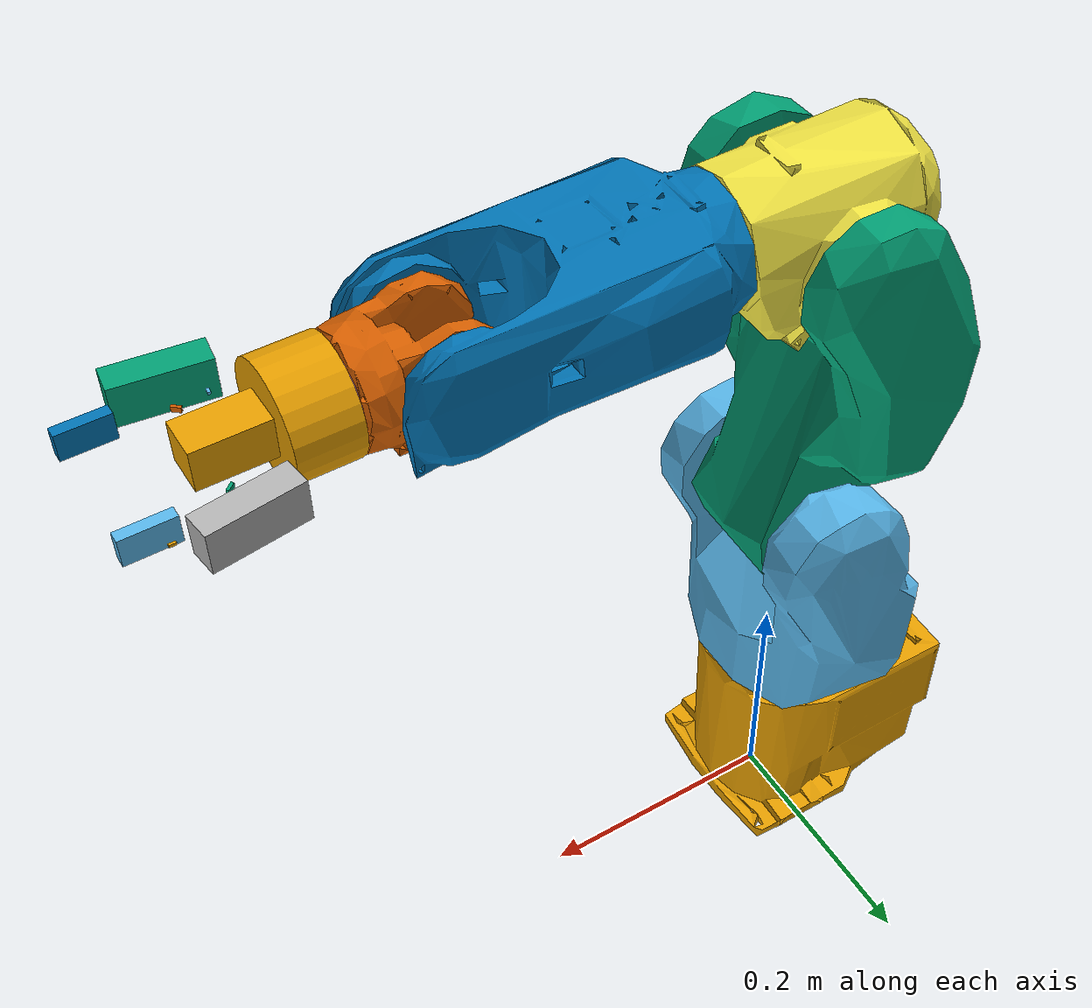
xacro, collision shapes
<?xml version="1.0" encoding="utf-8"?>
<robot xmlns:xacro="http://www.ros.org/wiki/xacro" name="mz04_gripper">
  <xacro:include filename="$(find mz04_description)/robots/mz04_arm.xacro"/>
  <xacro:include filename="$(find mz04_description)/robots/epick.xacro"/>
  <xacro:include filename="$(find mz04_description)/robots/hand/robotiq_2f_85.urdf.xacro"/>

  <xacro:arg name="arm_id" default="mz04" />

  <xacro:mz04_arm arm_id="$(arg arm_id)" />

  <xacro:robotiq_2f_85 parent="$(arg arm_id)_link6" name="hand">
    <origin xyz="0 0 0" rpy="0 0 0"/>
  </xacro:robotiq_2f_85>

</robot>

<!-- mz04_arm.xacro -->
<robot xmlns:xacro="http://www.ros.org/wiki/xacro" name="mz04">
  <xacro:macro name="mz04_arm" params="arm_id:='mz04' description_pkg:='mz04_description' connected_to:='' xyz:='0 0 0' rpy:='0 0 0'">
    <xacro:unless value="${not connected_to}">
      <joint name="${arm_id}_joint_${connected_to}" type="fixed">
        <parent link="${connected_to}"/>
        <child link="${arm_id}_link0"/>
        <origin rpy="${rpy}" xyz="${xyz}"/>
      </joint>
    </xacro:unless>

    <!-- for simulation -->

    <xacro:property name="joint_damping" value="1.0"/>
    <!-- end for simulation -->

    <link name="${arm_id}_link0">
      <visual>
        <geometry>
          <mesh filename="package://${description_pkg}/meshes/visual/link0.dae"/>
        </geometry>
      </visual>
      <collision>
        <geometry>
          <mesh filename="package://${description_pkg}/meshes/collision/link0.stl"/>
        </geometry>
      </collision>
    </link>
    <link name="${arm_id}_link1">
      <visual>
        <geometry>
          <mesh filename="package://${description_pkg}/meshes/visual/link1.dae"/>
        </geometry>
      </visual>
      <collision>
        <geometry>
          <mesh filename="package://${description_pkg}/meshes/collision/link1.stl"/>
        </geometry>
      </collision>

      <!-- for simulation -->
      <inertial>
        <origin
          xyz="-0.0197023514199581 0.000938298692799631 0.0855256712156905"
          rpy="0 0 0" />
        <mass
          value="3.29244591173868" />
        <inertia
          ixx="0.0222350895636315"
          ixy="-6.0973596097687E-05"
          ixz="-0.00175393698078112"
          iyy="0.0154200096606875"
          iyz="-0.000258002191557829"
          izz="0.0150764764826899" />
      </inertial>
      <!-- end for simulation -->
    </link>
    <joint name="${arm_id}_joint1" type="revolute">
      <safety_controller k_position="100.0" k_velocity="40.0" soft_lower_limit="-2.97" soft_upper_limit="2.97"/>
      <origin rpy="0 0 0" xyz="0 0 0.171"/>
      <parent link="${arm_id}_link0"/>
      <child link="${arm_id}_link1"/>
      <axis xyz="0 0 1"/>
      <limit effort="100" lower="-2.97" upper="2.97" velocity="8.38"/>

      <!-- for simulation -->
      <dynamics damping="${joint_damping}"/>
      <!-- end for simulation -->
    </joint>
    <link name="${arm_id}_link2">
      <visual>
        <geometry>
          <mesh filename="package://${description_pkg}/meshes/visual/link2.dae"/>
        </geometry>
      </visual>
      <collision>
        <geometry>
          <mesh filename="package://${description_pkg}/meshes/collision/link2.stl"/>
        </geometry>
      </collision>

      <!-- for simulation -->
      <inertial>
        <origin
          xyz="-0.0229430342959031 -0.129313116426115 -0.000857512097067098"
          rpy="0 0 0" />
        <mass
          value="3.43354405526974" />
        <inertia
          ixx="0.0374859154128489"
          ixy="-0.000577795026903937"
          ixz="6.67389962661599E-05"
          iyy="0.0140465634657448"
          iyz="0.000377486259040234"
          izz="0.0301480758700004" />
      </inertial>
      <!-- end for simulation -->
    </link>
    <joint name="${arm_id}_joint2" type="revolute">
      <safety_controller k_position="100.0" k_velocity="40.0" soft_lower_limit="-2.53" soft_upper_limit="1.57"/>
      <origin rpy="${-pi/2} 0 0" xyz="0 0 0.169"/>
      <parent link="${arm_id}_link1"/>
      <child link="${arm_id}_link2"/>
      <axis xyz="0 0 -1"/>
      <limit effort="100" lower="-2.53" upper="1.57" velocity="8.03"/>

      <!-- for simulation -->
      <dynamics damping="${joint_damping}"/>
      <!-- end for simulation -->
    </joint>
    <link name="${arm_id}_link3">
      <visual>
        <geometry>
          <mesh filename="package://${description_pkg}/meshes/visual/link3.dae"/>
        </geometry>
      </visual>
      <collision>
        <geometry>
          <mesh filename="package://${description_pkg}/meshes/collision/link3.stl"/>
        </geometry>
      </collision>

      <!-- for simulation -->
      <inertial>
        <origin
          xyz="0.00557516997606589 -0.000280097155568842 -0.000264708631542377"
          rpy="0 0 0" />
        <mass
          value="1.75772574412506" />
        <inertia
          ixx="0.0032167713214568"
          ixy="-0.000191167581086016"
          ixz="1.23933539489604E-06"
          iyy="0.00322653422939074"
          iyz="5.25316745371768E-06"
          izz="0.00390619750681237" />
      </inertial>
      <!-- end for simulation -->
    </link>
    <joint name="${arm_id}_joint3" type="revolute">
      <safety_controller k_position="100.0" k_velocity="40.0" soft_lower_limit="-2.18" soft_upper_limit="4.89"/>
      <origin rpy="0 0 ${-pi/2}" xyz="0 -0.26 0"/>
      <parent link="${arm_id}_link2"/>
      <child link="${arm_id}_link3"/>
      <axis xyz="0 0 -1"/>
      <limit effort="100" lower="-2.18" upper="4.89" velocity="9.08"/>

      <!-- for simulation -->
      <dynamics damping="${joint_damping}"/>
      <!-- end for simulation -->
    </joint>
    <link name="${arm_id}_link4">
      <visual>
        <geometry>
          <mesh filename="package://${description_pkg}/meshes/visual/link4.dae"/>
        </geometry>
      </visual>
      <collision>
        <geometry>
          <mesh filename="package://${description_pkg}/meshes/collision/link4.stl"/>
        </geometry>
      </collision>

      <!-- for simulation -->
      <inertial>
        <origin
          xyz="0.00309024473150554 -0.000145366515908234 -0.102946189818116"
          rpy="0 0 0" />
        <mass
          value="1.70562401190118" />
        <inertia
          ixx="0.00721639807702088"
          ixy="-3.42236031590701E-07"
          ixz="5.92374124737924E-05"
          iyy="0.00686286874449402"
          iyz="5.84968158425155E-06"
          izz="0.00220615434229459" />
      </inertial>
      <!-- end for simulation -->
    </link>
    <joint name="${arm_id}_joint4" type="revolute">
      <safety_controller k_position="100.0" k_velocity="40.0" soft_lower_limit="-3.32" soft_upper_limit="3.32"/>
      <origin rpy="${-pi/2} 0 0" xyz="0.0249999999999999 0.28 0"/>
      <parent link="${arm_id}_link3"/>
      <child link="${arm_id}_link4"/>
      <axis xyz="0 0 1"/>
      <limit effort="100" lower="-3.32" upper="3.32" velocity="9.77"/>

      <!-- for simulation -->
      <dynamics damping="${joint_damping}"/>
      <!-- end for simulation -->
    </joint>
    <link name="${arm_id}_link5">
      <visual>
        <geometry>
          <mesh filename="package://${description_pkg}/meshes/visual/link5.dae"/>
        </geometry>
      </visual>
      <collision>
        <geometry>
          <mesh filename="package://${description_pkg}/meshes/collision/link5.stl"/>
        </geometry>
      </collision>

      <!-- for simulation -->
      <inertial>
        <origin
          xyz="-5.86547276966165E-05 0.0199090373472192 -0.00293631213635448"
          rpy="0 0 0" />
        <mass
          value="0.336399836903676" />
        <inertia
          ixx="0.000446624368283086"
          ixy="2.47061371480887E-07"
          ixz="6.15821325897774E-07"
          iyy="0.000330568174441235"
          iyz="-1.87705108529991E-05"
          izz="0.000351036334434016" />
      </inertial>
      <!-- end for simulation -->
    </link>
    <joint name="${arm_id}_joint5" type="revolute">
      <safety_controller k_position="100.0" k_velocity="40.0" soft_lower_limit="-2.09" soft_upper_limit="2.09"/>
      <origin rpy="${pi/2} 0 0" xyz="0 0 0"/>
      <parent link="${arm_id}_link4"/>
      <child link="${arm_id}_link5"/>
      <axis xyz="0 0 -1"/>
      <limit effort="100" lower="-2.09" upper="2.09" velocity="9.77"/>

      <!-- for simulation -->
      <dynamics damping="${joint_damping}"/>
      <!-- end for simulation -->
    </joint>
    <link name="${arm_id}_link6">
      <visual>
        <geometry>
          <mesh filename="package://${description_pkg}/meshes/visual/link6.dae"/>
        </geometry>
      </visual>
      <collision>
        <geometry>
          <mesh filename="package://${description_pkg}/meshes/collision/link6.stl"/>
        </geometry>
      </collision>

      <!-- for simulation -->
      <inertial>
        <origin
          xyz="0.00020870301755449 5.54207254168023E-05 0.0685507759319275"
          rpy="0 0 0" />
        <mass
          value="0.0340082287388899" />
        <inertia
          ixx="8.72489057883343E-06"
          ixy="5.14603740499548E-08"
          ixz="-7.72265367887762E-09"
          iyy="8.58258061822553E-06"
          iyz="-2.01661845696461E-09"
          izz="1.61785714739617E-05" />
      </inertial>
      <!-- end for simulation -->
    </link>
    <joint name="${arm_id}_joint6" type="revolute">
      <safety_controller k_position="100.0" k_velocity="40.0" soft_lower_limit="-6.28" soft_upper_limit="6.28"/>
      <origin rpy="${-pi/2} 0 0" xyz="0 0.072 0"/>
      <parent link="${arm_id}_link5"/>
      <child link="${arm_id}_link6"/>
      <axis xyz="0 0 1"/>
      <limit effort="10" lower="-6.28" upper="6.28" velocity="15.71"/>

      <!-- for simulation -->
      <dynamics damping="${joint_damping}"/>
      <!-- end for simulation -->
    </joint>
  </xacro:macro>
</robot>

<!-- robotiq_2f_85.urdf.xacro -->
<robot xmlns:xacro="http://ros.org/wiki/xacro">

	<xacro:include filename="$(find mz04_description)/robots/hand/include/inertias.urdf.xacro" />

	<xacro:macro name="robotiq_2f_85" params="parent name precise_collision:=false adaptive_transmission:=false with_pads:=true *origin">

		<!-- the ee link of gripper -->
		<joint name="${parent}_${name}_ee_joint" type="fixed">
			<origin xyz="0 0 0.1493" rpy="0 0 0"/>
			<parent link="${name}_base"/>
			<child link="${name}_ee_link"/>
		</joint>
		<link name="${name}_ee_link"/>

		<!-- base -->
		<joint name="${parent}_${name}_base_joint" type="fixed">
			<xacro:insert_block name="origin"/>
			<parent link="${parent}"/>
			<child link="${name}_base"/>
		</joint>
		<link name="${name}_base">
			<inertial>
				<mass value="0.5"/>
				<origin xyz="0 0 ${0.015*0.5}"  />
				<cylinder_inertia radius="0.04" length="0.045" mass="0.5"/>
			</inertial>
			<visual>
				<origin xyz="0 0 0" rpy="0 -1.5708 0"/>
				<geometry>
					<mesh filename="package://mz04_description/meshes/hand/base.dae"/>
				</geometry>
			</visual>
			<xacro:unless value="${precise_collision}">
			<collision>
				<origin xyz="0 0 0.015" rpy="0 0 0"/>
				<geometry>
					<cylinder radius="0.04" length="0.045"/>
				</geometry>
			</collision>
			<collision>
				<origin xyz="0 0 0.06" rpy="0 0 0"/>
				<geometry>
					<box size="0.03 0.03 0.06"/>
				</geometry>
			</collision>
			</xacro:unless>
			<xacro:if value="${precise_collision}">
			<collision>
				<geometry>
					<mesh filename="package://mz04_description/meshes/hand/base.stl" scale="0.001 0.001 0.001"/>
				</geometry>
			</collision>
			</xacro:if>
		</link>

		<!-- right finger -->

		<joint name="${name}_right_driver_joint" type="revolute">
			<origin xyz="0 0.0306011 0.054904" rpy="0 0 0"/>
			<parent link="${name}_base"/>
			<child link="${name}_right_driver"/>
			<axis xyz="1 0 0"/>
			<limit lower="${0 * 3.141592 / 180}" upper="${50 * 3.141592 / 180}" effort="60" velocity="${110 * 3.141592 / 180}" />
		</joint>
		<link name="${name}_right_driver">
			<inertial>
				<mass value="0.1"/>
				<origin xyz="0 0.02 0" rpy="0 0 0" />
				<box_inertia x_dim="0.02" y_dim="0.04" z_dim="0.02" mass="0.1"/>
			</inertial>
			<visual>
				<geometry>
					<mesh filename="package://mz04_description/meshes/hand/driver.dae" scale="0.001 0.001 0.001"/>
				</geometry>
			</visual>
			<xacro:unless value="${precise_collision}">
			<collision>
				<origin xyz="0 0.01 0" rpy="-0.1 0 0"/>
				<geometry>
					<box size="0.002 0.004 0.002"/>
				</geometry>
			</collision>
			</xacro:unless>
			<xacro:if value="${precise_collision}">
			<collision>
				<geometry>
					<mesh filename="package://mz04_description/meshes/hand/driver.stl" scale="0.001 0.001 0.001"/>
				</geometry>
			</collision>
			</xacro:if>
		</link>

		<xacro:unless value="${adaptive_transmission}">
		<joint name="${name}_right_coupler_joint" type="fixed">
			<origin xyz="0 0.0315 -0.0041" rpy="0 0 0"/>
			<parent link="${name}_right_driver"/>
			<child link="${name}_right_coupler"/>
		</joint>
		</xacro:unless>
		<xacro:if value="${adaptive_transmission}">
			<joint name="${name}_right_coupler_joint" type="revolute">
			<origin xyz="0 0.0315 -0.0041" rpy="0 0 0"/>
			<parent link="${name}_right_driver"/>
			<child link="${name}_right_coupler"/>
			<axis xyz="1 0 0"/>
			<limit lower="${-170 * 3.141592 / 180}" upper="${170 * 3.141592 / 180}" effort="176" velocity="${110 * 3.141592 / 180}" />
		</joint>
		</xacro:if>
		<link name="${name}_right_coupler">
			<inertial>
				<mass value="0.1"/>
				<origin xyz="0 0.0 0.025" rpy="-1.7 0 0"/>
				<box_inertia x_dim="0.03" y_dim="0.065" z_dim="0.02" mass="0.1"/>
			</inertial>
			<visual>
				<geometry>
					<mesh filename="package://mz04_description/meshes/hand/coupler.dae" scale="0.001 0.001 0.001"/>
				</geometry>
			</visual>
			<xacro:unless value="${precise_collision}">
			<collision>
				<origin xyz="0 0.0 0.025" rpy="-1.7 0 0"/>
				<geometry>
					<box size="0.03 0.065 0.02"/>
				</geometry>
			</collision>
			</xacro:unless>
			<xacro:if value="${precise_collision}">
				<collision>
					<geometry>
						<mesh filename="package://mz04_description/meshes/hand/coupler.stl" scale="0.001 0.001 0.001"/>
					</geometry>
				</collision>
			</xacro:if>
		</link>

		<joint name="${name}_right_follower_joint" type="revolute">
			<origin xyz="0 0.0061 0.0471" rpy="0 0 0"/>
			<parent link="${name}_right_coupler"/>
			<child link="${name}_right_follower"/>
			<axis xyz="1 0 0"/>
			<limit lower="${-170 * 3.141592 / 180}" upper="${170 * 3.141592 / 180}" effort="176" velocity="${110 * 3.141592 / 180}" />

			<xacro:unless value="${adaptive_transmission}">
			<mimic joint="${name}_right_driver_joint" multiplier="-1"/>
			</xacro:unless>
		</joint>
		<link name="${name}_right_follower">
			<inertial>
				<mass value="0.1"/>
				<origin xyz="0 -0.018 0.022" />
				<box_inertia x_dim="0.02" y_dim="0.015" z_dim="0.048" mass="0.1"/>
			</inertial>
			<visual>
				<geometry>
					<mesh filename="package://mz04_description/meshes/hand/follower.dae" scale="0.001 0.001 0.001"/>
				</geometry>
			</visual>
			<xacro:unless value="${precise_collision}">
			<collision>
				<origin xyz="0 -0.01 0.022" rpy="0 0 0"/>
				<geometry>
					<box size="0.002 0.0015 0.0048"/>
				</geometry>
			</collision>
			</xacro:unless>
			<xacro:if value="${precise_collision}">
			<collision>
				<geometry>
					<mesh filename="package://mz04_description/meshes/hand/follower.stl" scale="0.001 0.001 0.001"/>
				</geometry>
			</collision>
			</xacro:if>
		</link>

		<xacro:if value="${with_pads}">
			<joint name="${name}_right_pad_joint" type="fixed">
				<parent link="${name}_right_follower"/>
				<child link="${name}_right_pad"/>
			</joint>
			<link name="${name}_right_pad">
				<inertial>
					<mass value="0.1"/>
					<origin xyz="0 -0.022 0.031" />
					<box_inertia x_dim="0.02" y_dim="0.008" z_dim="0.036" mass="0.1"/>
				</inertial>
				<visual>
					<geometry>
						<mesh filename="package://mz04_description/meshes/hand/pad.dae" scale="0.001 0.001 0.001"/>
					</geometry>
				</visual>
				<xacro:unless value="${precise_collision}">
				<collision>
					<origin xyz="0 -0.022 0.031" rpy="0 0 0"/>
					<geometry>
						<box size="0.02 0.008 0.036"/>
					</geometry>
				</collision>
				</xacro:unless>
				<xacro:if value="${precise_collision}">
				<collision>
					<geometry>
						<mesh filename="package://mz04_description/meshes/hand/pad.stl" scale="0.001 0.001 0.001"/>
					</geometry>
				</collision>
				</xacro:if>
			</link>
		</xacro:if>

		<joint name="${name}_right_spring_link_joint" type="revolute">
			<origin xyz="0 0.012 0.0614" rpy="0 0 0"/>
			<parent link="${name}_base"/>
			<child link="${name}_right_spring_link"/>
			<axis xyz="1 0 0"/>
			<limit lower="${-170 * 3.141592 / 180}" upper="${170 * 3.141592 / 180}" effort="176" velocity="${110 * 3.141592 / 180}" />

			<xacro:unless value="${adaptive_transmission}">
			<mimic joint="${name}_right_driver_joint" multiplier="1"/>
			</xacro:unless>
		</joint>
		<link name="${name}_right_spring_link">
			<inertial>
				<mass value="0.1"/>
				<origin xyz="0 0.018 0.018" rpy="-0.7068 0 0"/>
				<box_inertia x_dim="0.04" y_dim="0.02" z_dim="0.065" mass="0.1"/>
			</inertial>
			<visual>
				<geometry>
					<mesh filename="package://mz04_description/meshes/hand/spring_link.dae" scale="0.001 0.001 0.001"/>
				</geometry>
			</visual>
			<xacro:unless value="${precise_collision}">
			<collision>
				<origin xyz="0 0.025 0.015" rpy="-0.7068 0 0"/>
				<geometry>
					<box size="0.004 0.002 0.0065"/>
				</geometry>
			</collision>
			</xacro:unless>
			<xacro:if value="${precise_collision}">
			<collision>
				<geometry>
					<mesh filename="package://mz04_description/meshes/hand/spring_link.stl" scale="0.001 0.001 0.001"/>
				</geometry>
			</collision>
			</xacro:if>
		</link>

		<!-- left finger -->

		<joint name="${name}_left_driver_joint" type="revolute">
			<origin xyz="0 -0.0306011 0.054904" rpy="0 0 3.141592653589793"/>
			<parent link="${name}_base"/>
			<child link="${name}_left_driver"/>
			<axis xyz="1 0 0"/>
			<limit lower="${0 * 3.141592 / 180}" upper="${50 * 3.141592 / 180}" effort="176" velocity="${110 * 3.141592 / 180}" />

			<xacro:unless value="${adaptive_transmission}">
			<mimic joint="${name}_right_driver_joint" multiplier="1"/>
			</xacro:unless>
		</joint>
		<link name="${name}_left_driver">
			<inertial>
				<mass value="0.1"/>
				<origin xyz="0 0.02 0" rpy="0 0 0" />
				<box_inertia x_dim="0.02" y_dim="0.04" z_dim="0.02" mass="0.1"/>
			</inertial>
			<visual>
				<geometry>
					<mesh filename="package://mz04_description/meshes/hand/driver.dae" scale="0.001 0.001 0.001"/>
				</geometry>
			</visual>
			<xacro:unless value="${precise_collision}">
			<collision>
				<origin xyz="0 0.01 0" rpy="-0.1 0 0"/>
				<geometry>
					<box size="0.002 0.004 0.002"/>
				</geometry>
			</collision>
			</xacro:unless>
			<xacro:if value="${precise_collision}">
			<collision>
				<geometry>
					<mesh filename="package://mz04_description/meshes/hand/driver.stl" scale="0.001 0.001 0.001"/>
				</geometry>
			</collision>
			</xacro:if>
		</link>

		<xacro:unless value="${adaptive_transmission}">
		<joint name="${name}_left_coupler_joint" type="fixed">
			<origin xyz="0 0.0315 -0.0041" rpy="0 0 0"/>
			<parent link="${name}_left_driver"/>
			<child link="${name}_left_coupler"/>
		</joint>
		</xacro:unless>
		<xacro:if value="${adaptive_transmission}">
			<joint name="${name}_left_coupler_joint" type="revolute">
			<origin xyz="0 0.0315 -0.0041" rpy="0 0 0"/>
			<parent link="${name}_left_driver"/>
			<child link="${name}_left_coupler"/>
			<axis xyz="1 0 0"/>
			<limit lower="${-170 * 3.141592 / 180}" upper="${170 * 3.141592 / 180}" effort="176" velocity="${110 * 3.141592 / 180}" />
		</joint>
		</xacro:if>
		<link name="${name}_left_coupler">
			<inertial>
				<mass value="0.1"/>
				<origin xyz="0 0.0 0.025" rpy="-1.7 0 0"/>
				<box_inertia x_dim="0.03" y_dim="0.065" z_dim="0.02" mass="0.1"/>
			</inertial>
			<visual>
				<geometry>
					<mesh filename="package://mz04_description/meshes/hand/coupler.dae" scale="0.001 0.001 0.001"/>
				</geometry>
			</visual>
			<xacro:unless value="${precise_collision}">
			<collision>
				<origin xyz="0 0.0 0.025" rpy="-1.7 0 0"/>
				<geometry>
					<box size="0.03 0.065 0.02"/>
				</geometry>
			</collision>
			</xacro:unless>
			<xacro:if value="${precise_collision}">
				<collision>
					<geometry>
						<mesh filename="package://mz04_description/meshes/hand/coupler.stl" scale="0.001 0.001 0.001"/>
					</geometry>
				</collision>
			</xacro:if>
		</link>

		<joint name="${name}_left_follower_joint" type="revolute">
			<origin xyz="0 0.0061 0.0471" rpy="0 0 0"/>
			<parent link="${name}_left_coupler"/>
			<child link="${name}_left_follower"/>
			<axis xyz="1 0 0"/>
			<limit lower="${-170 * 3.141592 / 180}" upper="${170 * 3.141592 / 180}" effort="176" velocity="${110 * 3.141592 / 180}" />

			<xacro:unless value="${adaptive_transmission}">
			<mimic joint="${name}_right_driver_joint" multiplier="-1"/>
			</xacro:unless>
		</joint>
		<link name="${name}_left_follower">
			<inertial>
				<mass value="0.1"/>
				<origin xyz="0 -0.018 0.022" />
				<box_inertia x_dim="0.02" y_dim="0.015" z_dim="0.048" mass="0.1"/>
			</inertial>
			<visual>
				<geometry>
					<mesh filename="package://mz04_description/meshes/hand/follower.dae" scale="0.001 0.001 0.001"/>
				</geometry>
			</visual>
			<xacro:unless value="${precise_collision}">
			<collision>
				<origin xyz="0 -0.01 0.022" rpy="0 0 0"/>
				<geometry>
					<box size="0.002 0.0015 0.0048"/>
				</geometry>
			</collision>
			</xacro:unless>
			<xacro:if value="${precise_collision}">
			<collision>
				<geometry>
					<mesh filename="package://mz04_description/meshes/hand/follower.stl" scale="0.001 0.001 0.001"/>
				</geometry>
			</collision>
			</xacro:if>
		</link>

		<xacro:if value="${with_pads}">
			<joint name="${name}_left_pad_joint" type="fixed">
				<parent link="${name}_left_follower"/>
				<child link="${name}_left_pad"/>
			</joint>
			<link name="${name}_left_pad">
				<inertial>
					<mass value="0.1"/>
					<origin xyz="0 -0.022 0.031" />
					<box_inertia x_dim="0.02" y_dim="0.008" z_dim="0.036" mass="0.1"/>
				</inertial>
				<visual>
					<geometry>
						<mesh filename="package://mz04_description/meshes/hand/pad.dae" scale="0.001 0.001 0.001"/>
					</geometry>
				</visual>
				<xacro:unless value="${precise_collision}">
				<collision>
					<origin xyz="0 -0.022 0.031" rpy="0 0 0"/>
					<geometry>
						<box size="0.02 0.008 0.036"/>
					</geometry>
				</collision>
				</xacro:unless>
				<xacro:if value="${precise_collision}">
				<collision>
					<geometry>
						<mesh filename="package://mz04_description/meshes/hand/pad.stl" scale="0.001 0.001 0.001"/>
					</geometry>
				</collision>
				</xacro:if>
			</link>
		</xacro:if>

		<joint name="${name}_left_spring_link_joint" type="revolute">
			<origin xyz="0 -0.012 0.0614" rpy="0 0 3.141592653589793"/>
			<parent link="${name}_base"/>
			<child link="${name}_left_spring_link"/>
			<axis xyz="1 0 0"/>
			<limit lower="${-170 * 3.141592 / 180}" upper="${170 * 3.141592 / 180}" effort="176" velocity="${110 * 3.141592 / 180}" />

			<xacro:unless value="${adaptive_transmission}">
			<mimic joint="${name}_right_driver_joint" multiplier="1"/>
			</xacro:unless>
		</joint>
		<link name="${name}_left_spring_link">
			<inertial>
				<mass value="0.1"/>
				<origin xyz="0 0.018 0.018" rpy="-0.7068 0 0"/>
				<box_inertia x_dim="0.04" y_dim="0.02" z_dim="0.065" mass="0.1"/>
			</inertial>
			<visual>
				<geometry>
					<mesh filename="package://mz04_description/meshes/hand/spring_link.dae" scale="0.001 0.001 0.001"/>
				</geometry>
			</visual>
			<xacro:unless value="${precise_collision}">
			<collision>
				<origin xyz="0 0.025 0.015" rpy="-0.7068 0 0"/>
				<geometry>
					<box size="0.004 0.002 0.0065"/>
				</geometry>
			</collision>
			</xacro:unless>
			<xacro:if value="${precise_collision}">
			<collision>
				<geometry>
					<mesh filename="package://mz04_description/meshes/hand/spring_link.stl" scale="0.001 0.001 0.001"/>
				</geometry>
			</collision>
			</xacro:if>
		</link>

		<gazebo reference="${name}_right_pad">
			<kp>1000000.0</kp>
			<kd>1.0</kd>
			<mu1>100.0</mu1>
			<mu2>100.0</mu2>
			<minDepth>0.003</minDepth>
		</gazebo>

		<gazebo reference="${name}_left_pad">
			<kp>1000000.0</kp>
			<kd>1.0</kd>
			<mu1>100.0</mu1>
			<mu2>100.0</mu2>
			<minDepth>0.003</minDepth>
		</gazebo>

		<gazebo>
			<gripper name="grasping">
				<grasp_check>
					<attach_steps>1</attach_steps>
					<detach_steps>1</detach_steps>
					<min_contact_count>1</min_contact_count>
				</grasp_check>
				<gripper_link>${name}_left_pad</gripper_link>
				<palm_link>${name}_right_pad</palm_link>
			</gripper>
		</gazebo>

		<gazebo reference="${name}_right_driver_joint">
			<implicitSpringDamper>1</implicitSpringDamper>
		</gazebo>
		<gazebo reference="${name}_right_coupler_joint">
			<implicitSpringDamper>1</implicitSpringDamper>
		</gazebo>
		<gazebo reference="${name}_right_follower_joint">
			<implicitSpringDamper>1</implicitSpringDamper>
		</gazebo>
		<gazebo reference="${name}_right_pad_joint">
			<implicitSpringDamper>1</implicitSpringDamper>
		</gazebo>
		<gazebo reference="${name}_right_spring_link_joint">
			<implicitSpringDamper>1</implicitSpringDamper>
		</gazebo>
		<gazebo reference="${name}_left_driver_joint">
			<implicitSpringDamper>1</implicitSpringDamper>
		</gazebo>
		<gazebo reference="${name}_left_coupler_joint">
			<implicitSpringDamper>1</implicitSpringDamper>
		</gazebo>
		<gazebo reference="${name}_left_follower_joint">
			<implicitSpringDamper>1</implicitSpringDamper>
		</gazebo>
		<gazebo reference="${name}_left_pad_joint">
			<implicitSpringDamper>1</implicitSpringDamper>
		</gazebo>
		<gazebo reference="${name}_left_spring_link_joint">
			<implicitSpringDamper>1</implicitSpringDamper>
		</gazebo>

		<xacro:unless value="${adaptive_transmission}">
			<transmission name="${name}_right_driver_trans">
				<type>transmission_interface/SimpleTransmission</type>
				<joint name="${name}_right_driver_joint">
					<hardwareInterface>hardware_interface/PositionJointInterface</hardwareInterface>
				</joint>
				<actuator name="${name}_right_driver_motor">
					<hardwareInterface>hardware_interface/PositionJointInterface</hardwareInterface>
					<mechanicalReduction>1</mechanicalReduction>
				</actuator>
			</transmission>

			<gazebo>
				<plugin name="${name}_right_follower_joint_plugin" filename="libroboticsgroup_gazebo_mimic_joint_plugin.so">
					<joint>${name}_right_driver_joint</joint>
					<mimicJoint>${name}_right_follower_joint</mimicJoint>
					<multiplier>-1</multiplier>
				</plugin>
				<plugin name="${name}_right_spring_link_joint_plugin" filename="libroboticsgroup_gazebo_mimic_joint_plugin.so">
					<joint>${name}_right_driver_joint</joint>
					<mimicJoint>${name}_right_spring_link_joint</mimicJoint>
					<multiplier>1</multiplier>
				</plugin>
				<plugin name="${name}_left_follower_joint_plugin" filename="libroboticsgroup_gazebo_mimic_joint_plugin.so">
					<joint>${name}_right_driver_joint</joint>
					<mimicJoint>${name}_left_follower_joint</mimicJoint>
					<multiplier>-1</multiplier>
				</plugin>
				<plugin name="${name}_left_spring_link_joint_plugin" filename="libroboticsgroup_gazebo_mimic_joint_plugin.so">
					<joint>${name}_right_driver_joint</joint>
					<mimicJoint>${name}_left_spring_link_joint</mimicJoint>
					<multiplier>1</multiplier>
				</plugin>
				<plugin name="${name}_left_driver_joint_plugin" filename="libroboticsgroup_gazebo_mimic_joint_plugin.so">
					<joint>${name}_right_driver_joint</joint>
					<mimicJoint>${name}_left_driver_joint</mimicJoint>
					<multiplier>1</multiplier>
				</plugin>
				<plugin name="${name}_right_pad_joint_plugin" filename="libroboticsgroup_gazebo_mimic_joint_plugin.so">
					<joint>${name}_right_follower_joint</joint>
					<mimicJoint>${name}_right_pad_joint</mimicJoint>
					<multiplier>0</multiplier>
				</plugin>
				<plugin name="${name}_left_pad_joint_plugin" filename="libroboticsgroup_gazebo_mimic_joint_plugin.so">
					<joint>${name}_right_follower_joint</joint>
					<mimicJoint>${name}_left_pad_joint</mimicJoint>
					<multiplier>0</multiplier>
				</plugin>
			</gazebo>
		</xacro:unless>
	</xacro:macro>
</robot>
